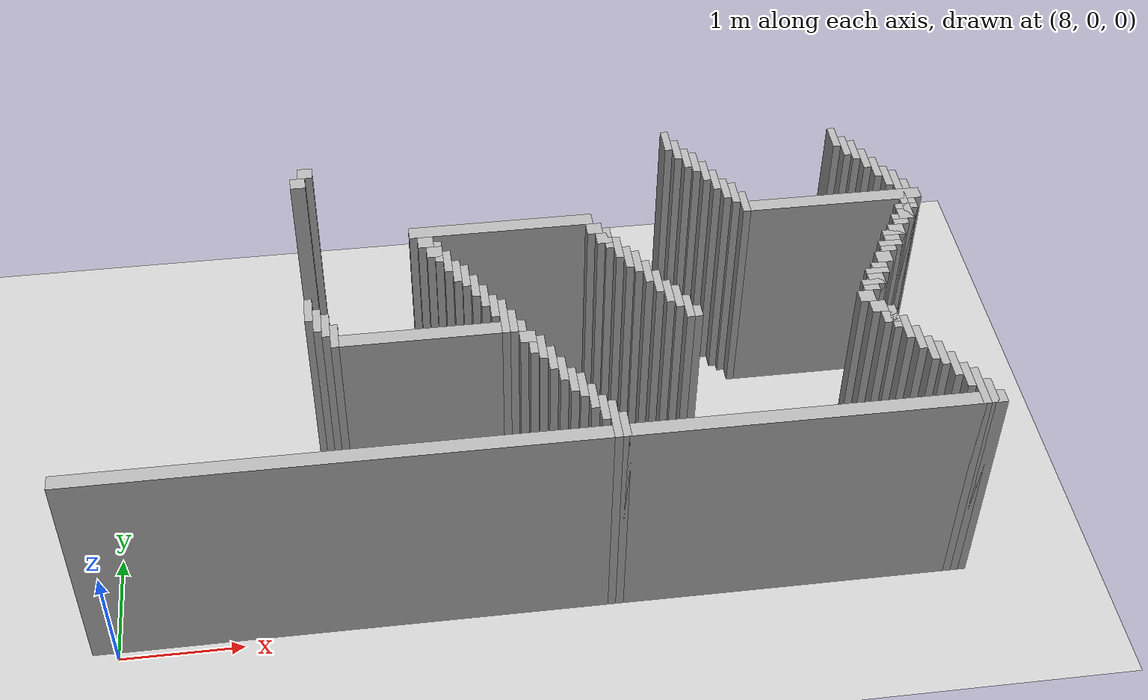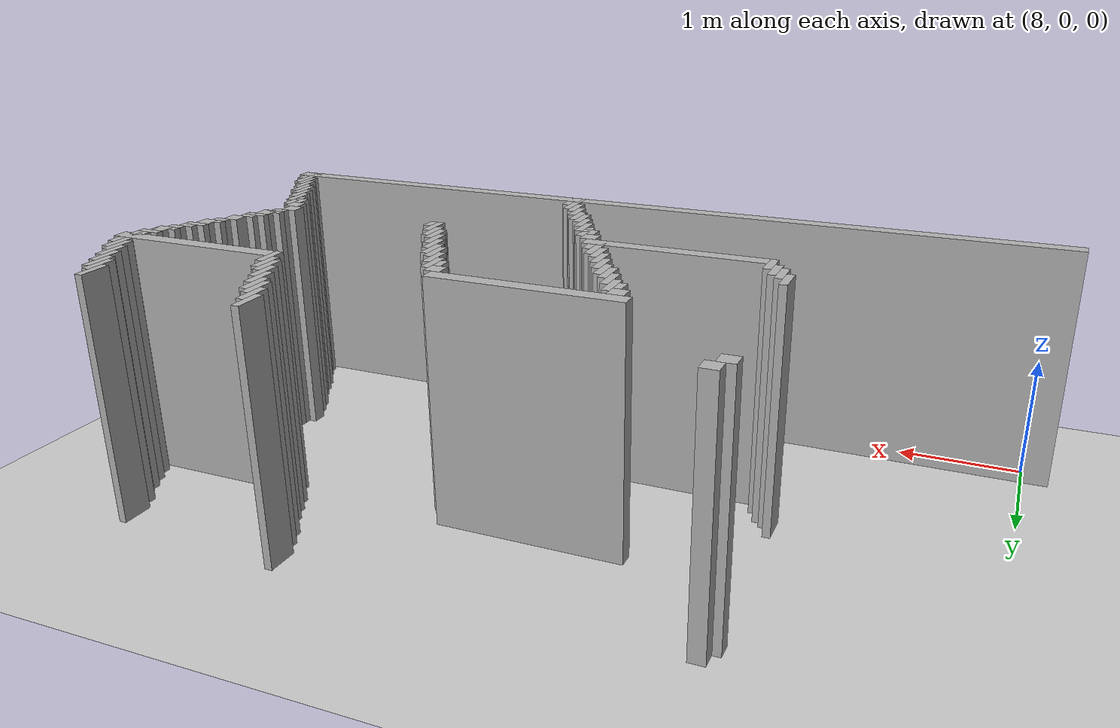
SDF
<sdf version="1.6">
 <world name="slam_world">
  <model name="ground_plane">
   <static>true</static>
   <link name="link">
    <collision name="collision">
     <geometry><plane><normal>0 0 1</normal><size>100 100</size></plane></geometry>
    </collision>
    <visual name="visual">
     <geometry><plane><normal>0 0 1</normal><size>100 100</size></plane></geometry>
     <material>
      <ambient>0.8 0.8 0.8 1</ambient>
      <diffuse>0.8 0.8 0.8 1</diffuse>
      <specular>0.8 0.8 0.8 1</specular>
     </material>
    </visual>
   </link>
  </model>
  <model name="wall_1944">
   <static>true</static>
   <pose>12.925531914893616 3.5106382978723403 1.0 0 0 0</pose>
   <link name="link">
    <collision name="collision">
     <geometry><box><size>0.06382978723404255 0.2553191489361702 2.0</size></box></geometry>
    </collision>
    <visual name="visual">
     <geometry><box><size>0.06382978723404255 0.2553191489361702 2.0</size></box></geometry>
     <material><ambient>0.5 0.5 0.5 1</ambient><diffuse>0.7 0.7 0.7 1</diffuse></material>
    </visual>
   </link>
  </model>
  <model name="wall_1955">
   <static>true</static>
   <pose>9.76595744680851 3.4468085106382977 1.0 0 0 0</pose>
   <link name="link">
    <collision name="collision">
     <geometry><box><size>0.1276595744680851 0.1276595744680851 2.0</size></box></geometry>
    </collision>
    <visual name="visual">
     <geometry><box><size>0.1276595744680851 0.1276595744680851 2.0</size></box></geometry>
     <material><ambient>0.5 0.5 0.5 1</ambient><diffuse>0.7 0.7 0.7 1</diffuse></material>
    </visual>
   </link>
  </model>
  <model name="wall_1956">
   <static>true</static>
   <pose>12.989361702127658 3.382978723404255 1.0 0 0 0</pose>
   <link name="link">
    <collision name="collision">
     <geometry><box><size>0.06382978723404255 0.2553191489361702 2.0</size></box></geometry>
    </collision>
    <visual name="visual">
     <geometry><box><size>0.06382978723404255 0.2553191489361702 2.0</size></box></geometry>
     <material><ambient>0.5 0.5 0.5 1</ambient><diffuse>0.7 0.7 0.7 1</diffuse></material>
    </visual>
   </link>
  </model>
  <model name="wall_1957">
   <static>true</static>
   <pose>14.393617021276595 3.382978723404255 1.0 0 0 0</pose>
   <link name="link">
    <collision name="collision">
     <geometry><box><size>0.06382978723404255 0.2553191489361702 2.0</size></box></geometry>
    </collision>
    <visual name="visual">
     <geometry><box><size>0.06382978723404255 0.2553191489361702 2.0</size></box></geometry>
     <material><ambient>0.5 0.5 0.5 1</ambient><diffuse>0.7 0.7 0.7 1</diffuse></material>
    </visual>
   </link>
  </model>
  <model name="wall_1963">
   <static>true</static>
   <pose>9.702127659574467 3.3191489361702127 1.0 0 0 0</pose>
   <link name="link">
    <collision name="collision">
     <geometry><box><size>0.1276595744680851 0.1276595744680851 2.0</size></box></geometry>
    </collision>
    <visual name="visual">
     <geometry><box><size>0.1276595744680851 0.1276595744680851 2.0</size></box></geometry>
     <material><ambient>0.5 0.5 0.5 1</ambient><diffuse>0.7 0.7 0.7 1</diffuse></material>
    </visual>
   </link>
  </model>
  <model name="wall_1964">
   <static>true</static>
   <pose>13.053191489361701 3.25531914893617 1.0 0 0 0</pose>
   <link name="link">
    <collision name="collision">
     <geometry><box><size>0.06382978723404255 0.2553191489361702 2.0</size></box></geometry>
    </collision>
    <visual name="visual">
     <geometry><box><size>0.06382978723404255 0.2553191489361702 2.0</size></box></geometry>
     <material><ambient>0.5 0.5 0.5 1</ambient><diffuse>0.7 0.7 0.7 1</diffuse></material>
    </visual>
   </link>
  </model>
  <model name="wall_1965">
   <static>true</static>
   <pose>14.457446808510637 3.25531914893617 1.0 0 0 0</pose>
   <link name="link">
    <collision name="collision">
     <geometry><box><size>0.06382978723404255 0.2553191489361702 2.0</size></box></geometry>
    </collision>
    <visual name="visual">
     <geometry><box><size>0.06382978723404255 0.2553191489361702 2.0</size></box></geometry>
     <material><ambient>0.5 0.5 0.5 1</ambient><diffuse>0.7 0.7 0.7 1</diffuse></material>
    </visual>
   </link>
  </model>
  <model name="wall_1972">
   <static>true</static>
   <pose>13.117021276595743 3.1914893617021276 1.0 0 0 0</pose>
   <link name="link">
    <collision name="collision">
     <geometry><box><size>0.06382978723404255 0.2553191489361702 2.0</size></box></geometry>
    </collision>
    <visual name="visual">
     <geometry><box><size>0.06382978723404255 0.2553191489361702 2.0</size></box></geometry>
     <material><ambient>0.5 0.5 0.5 1</ambient><diffuse>0.7 0.7 0.7 1</diffuse></material>
    </visual>
   </link>
  </model>
  <model name="wall_1973">
   <static>true</static>
   <pose>14.52127659574468 3.1914893617021276 1.0 0 0 0</pose>
   <link name="link">
    <collision name="collision">
     <geometry><box><size>0.06382978723404255 0.2553191489361702 2.0</size></box></geometry>
    </collision>
    <visual name="visual">
     <geometry><box><size>0.06382978723404255 0.2553191489361702 2.0</size></box></geometry>
     <material><ambient>0.5 0.5 0.5 1</ambient><diffuse>0.7 0.7 0.7 1</diffuse></material>
    </visual>
   </link>
  </model>
  <model name="wall_1983">
   <static>true</static>
   <pose>13.180851063829786 3.0638297872340425 1.0 0 0 0</pose>
   <link name="link">
    <collision name="collision">
     <geometry><box><size>0.06382978723404255 0.2553191489361702 2.0</size></box></geometry>
    </collision>
    <visual name="visual">
     <geometry><box><size>0.06382978723404255 0.2553191489361702 2.0</size></box></geometry>
     <material><ambient>0.5 0.5 0.5 1</ambient><diffuse>0.7 0.7 0.7 1</diffuse></material>
    </visual>
   </link>
  </model>
  <model name="wall_1984">
   <static>true</static>
   <pose>14.585106382978722 3.0638297872340425 1.0 0 0 0</pose>
   <link name="link">
    <collision name="collision">
     <geometry><box><size>0.06382978723404255 0.2553191489361702 2.0</size></box></geometry>
    </collision>
    <visual name="visual">
     <geometry><box><size>0.06382978723404255 0.2553191489361702 2.0</size></box></geometry>
     <material><ambient>0.5 0.5 0.5 1</ambient><diffuse>0.7 0.7 0.7 1</diffuse></material>
    </visual>
   </link>
  </model>
  <model name="wall_1994">
   <static>true</static>
   <pose>13.244680851063828 2.936170212765957 1.0 0 0 0</pose>
   <link name="link">
    <collision name="collision">
     <geometry><box><size>0.06382978723404255 0.2553191489361702 2.0</size></box></geometry>
    </collision>
    <visual name="visual">
     <geometry><box><size>0.06382978723404255 0.2553191489361702 2.0</size></box></geometry>
     <material><ambient>0.5 0.5 0.5 1</ambient><diffuse>0.7 0.7 0.7 1</diffuse></material>
    </visual>
   </link>
  </model>
  <model name="wall_1995">
   <static>true</static>
   <pose>14.648936170212766 2.936170212765957 1.0 0 0 0</pose>
   <link name="link">
    <collision name="collision">
     <geometry><box><size>0.06382978723404255 0.2553191489361702 2.0</size></box></geometry>
    </collision>
    <visual name="visual">
     <geometry><box><size>0.06382978723404255 0.2553191489361702 2.0</size></box></geometry>
     <material><ambient>0.5 0.5 0.5 1</ambient><diffuse>0.7 0.7 0.7 1</diffuse></material>
    </visual>
   </link>
  </model>
  <model name="wall_2002">
   <static>true</static>
   <pose>13.308510638297872 2.808510638297872 1.0 0 0 0</pose>
   <link name="link">
    <collision name="collision">
     <geometry><box><size>0.06382978723404255 0.2553191489361702 2.0</size></box></geometry>
    </collision>
    <visual name="visual">
     <geometry><box><size>0.06382978723404255 0.2553191489361702 2.0</size></box></geometry>
     <material><ambient>0.5 0.5 0.5 1</ambient><diffuse>0.7 0.7 0.7 1</diffuse></material>
    </visual>
   </link>
  </model>
  <model name="wall_2003">
   <static>true</static>
   <pose>14.712765957446807 2.808510638297872 1.0 0 0 0</pose>
   <link name="link">
    <collision name="collision">
     <geometry><box><size>0.06382978723404255 0.2553191489361702 2.0</size></box></geometry>
    </collision>
    <visual name="visual">
     <geometry><box><size>0.06382978723404255 0.2553191489361702 2.0</size></box></geometry>
     <material><ambient>0.5 0.5 0.5 1</ambient><diffuse>0.7 0.7 0.7 1</diffuse></material>
    </visual>
   </link>
  </model>
  <model name="wall_2010">
   <static>true</static>
   <pose>13.372340425531913 2.7446808510638294 1.0 0 0 0</pose>
   <link name="link">
    <collision name="collision">
     <geometry><box><size>0.06382978723404255 0.2553191489361702 2.0</size></box></geometry>
    </collision>
    <visual name="visual">
     <geometry><box><size>0.06382978723404255 0.2553191489361702 2.0</size></box></geometry>
     <material><ambient>0.5 0.5 0.5 1</ambient><diffuse>0.7 0.7 0.7 1</diffuse></material>
    </visual>
   </link>
  </model>
  <model name="wall_2011">
   <static>true</static>
   <pose>14.77659574468085 2.553191489361702 1.0 0 0 0</pose>
   <link name="link">
    <collision name="collision">
     <geometry><box><size>0.06382978723404255 0.6382978723404255 2.0</size></box></geometry>
    </collision>
    <visual name="visual">
     <geometry><box><size>0.06382978723404255 0.6382978723404255 2.0</size></box></geometry>
     <material><ambient>0.5 0.5 0.5 1</ambient><diffuse>0.7 0.7 0.7 1</diffuse></material>
    </visual>
   </link>
  </model>
  <model name="wall_2020">
   <static>true</static>
   <pose>13.436170212765957 2.6170212765957444 1.0 0 0 0</pose>
   <link name="link">
    <collision name="collision">
     <geometry><box><size>0.06382978723404255 0.2553191489361702 2.0</size></box></geometry>
    </collision>
    <visual name="visual">
     <geometry><box><size>0.06382978723404255 0.2553191489361702 2.0</size></box></geometry>
     <material><ambient>0.5 0.5 0.5 1</ambient><diffuse>0.7 0.7 0.7 1</diffuse></material>
    </visual>
   </link>
  </model>
  <model name="wall_2021">
   <static>true</static>
   <pose>14.840425531914892 2.553191489361702 1.0 0 0 0</pose>
   <link name="link">
    <collision name="collision">
     <geometry><box><size>0.06382978723404255 0.3829787234042553 2.0</size></box></geometry>
    </collision>
    <visual name="visual">
     <geometry><box><size>0.06382978723404255 0.3829787234042553 2.0</size></box></geometry>
     <material><ambient>0.5 0.5 0.5 1</ambient><diffuse>0.7 0.7 0.7 1</diffuse></material>
    </visual>
   </link>
  </model>
  <model name="wall_2031">
   <static>true</static>
   <pose>11.361702127659573 2.553191489361702 1.0 0 0 0</pose>
   <link name="link">
    <collision name="collision">
     <geometry><box><size>1.5319148936170213 0.1276595744680851 2.0</size></box></geometry>
    </collision>
    <visual name="visual">
     <geometry><box><size>1.5319148936170213 0.1276595744680851 2.0</size></box></geometry>
     <material><ambient>0.5 0.5 0.5 1</ambient><diffuse>0.7 0.7 0.7 1</diffuse></material>
    </visual>
   </link>
  </model>
  <model name="wall_2032">
   <static>true</static>
   <pose>14.202127659574467 2.553191489361702 1.0 0 0 0</pose>
   <link name="link">
    <collision name="collision">
     <geometry><box><size>1.4680851063829785 0.1276595744680851 2.0</size></box></geometry>
    </collision>
    <visual name="visual">
     <geometry><box><size>1.4680851063829785 0.1276595744680851 2.0</size></box></geometry>
     <material><ambient>0.5 0.5 0.5 1</ambient><diffuse>0.7 0.7 0.7 1</diffuse></material>
    </visual>
   </link>
  </model>
  <model name="wall_2037">
   <static>true</static>
   <pose>10.723404255319148 2.4255319148936167 1.0 0 0 0</pose>
   <link name="link">
    <collision name="collision">
     <geometry><box><size>0.1276595744680851 0.1276595744680851 2.0</size></box></geometry>
    </collision>
    <visual name="visual">
     <geometry><box><size>0.1276595744680851 0.1276595744680851 2.0</size></box></geometry>
     <material><ambient>0.5 0.5 0.5 1</ambient><diffuse>0.7 0.7 0.7 1</diffuse></material>
    </visual>
   </link>
  </model>
  <model name="wall_2038">
   <static>true</static>
   <pose>12.127659574468083 2.4255319148936167 1.0 0 0 0</pose>
   <link name="link">
    <collision name="collision">
     <geometry><box><size>0.1276595744680851 0.1276595744680851 2.0</size></box></geometry>
    </collision>
    <visual name="visual">
     <geometry><box><size>0.1276595744680851 0.1276595744680851 2.0</size></box></geometry>
     <material><ambient>0.5 0.5 0.5 1</ambient><diffuse>0.7 0.7 0.7 1</diffuse></material>
    </visual>
   </link>
  </model>
  <model name="wall_2043">
   <static>true</static>
   <pose>10.819148936170212 2.2978723404255317 1.0 0 0 0</pose>
   <link name="link">
    <collision name="collision">
     <geometry><box><size>0.06382978723404255 0.2553191489361702 2.0</size></box></geometry>
    </collision>
    <visual name="visual">
     <geometry><box><size>0.06382978723404255 0.2553191489361702 2.0</size></box></geometry>
     <material><ambient>0.5 0.5 0.5 1</ambient><diffuse>0.7 0.7 0.7 1</diffuse></material>
    </visual>
   </link>
  </model>
  <model name="wall_2044">
   <static>true</static>
   <pose>12.223404255319148 2.2978723404255317 1.0 0 0 0</pose>
   <link name="link">
    <collision name="collision">
     <geometry><box><size>0.06382978723404255 0.2553191489361702 2.0</size></box></geometry>
    </collision>
    <visual name="visual">
     <geometry><box><size>0.06382978723404255 0.2553191489361702 2.0</size></box></geometry>
     <material><ambient>0.5 0.5 0.5 1</ambient><diffuse>0.7 0.7 0.7 1</diffuse></material>
    </visual>
   </link>
  </model>
  <model name="wall_2045">
   <static>true</static>
   <pose>14.77659574468085 2.3936170212765955 1.0 0 0 0</pose>
   <link name="link">
    <collision name="collision">
     <geometry><box><size>0.19148936170212766 0.06382978723404255 2.0</size></box></geometry>
    </collision>
    <visual name="visual">
     <geometry><box><size>0.19148936170212766 0.06382978723404255 2.0</size></box></geometry>
     <material><ambient>0.5 0.5 0.5 1</ambient><diffuse>0.7 0.7 0.7 1</diffuse></material>
    </visual>
   </link>
  </model>
  <model name="wall_2051">
   <static>true</static>
   <pose>10.787234042553191 2.2978723404255317 1.0 0 0 0</pose>
   <link name="link">
    <collision name="collision">
     <geometry><box><size>0.1276595744680851 0.1276595744680851 2.0</size></box></geometry>
    </collision>
    <visual name="visual">
     <geometry><box><size>0.1276595744680851 0.1276595744680851 2.0</size></box></geometry>
     <material><ambient>0.5 0.5 0.5 1</ambient><diffuse>0.7 0.7 0.7 1</diffuse></material>
    </visual>
   </link>
  </model>
  <model name="wall_2052">
   <static>true</static>
   <pose>12.191489361702127 2.2978723404255317 1.0 0 0 0</pose>
   <link name="link">
    <collision name="collision">
     <geometry><box><size>0.1276595744680851 0.1276595744680851 2.0</size></box></geometry>
    </collision>
    <visual name="visual">
     <geometry><box><size>0.1276595744680851 0.1276595744680851 2.0</size></box></geometry>
     <material><ambient>0.5 0.5 0.5 1</ambient><diffuse>0.7 0.7 0.7 1</diffuse></material>
    </visual>
   </link>
  </model>
  <model name="wall_2053">
   <static>true</static>
   <pose>14.744680851063828 2.2978723404255317 1.0 0 0 0</pose>
   <link name="link">
    <collision name="collision">
     <geometry><box><size>0.1276595744680851 0.1276595744680851 2.0</size></box></geometry>
    </collision>
    <visual name="visual">
     <geometry><box><size>0.1276595744680851 0.1276595744680851 2.0</size></box></geometry>
     <material><ambient>0.5 0.5 0.5 1</ambient><diffuse>0.7 0.7 0.7 1</diffuse></material>
    </visual>
   </link>
  </model>
  <model name="wall_2059">
   <static>true</static>
   <pose>10.882978723404255 2.1702127659574466 1.0 0 0 0</pose>
   <link name="link">
    <collision name="collision">
     <geometry><box><size>0.06382978723404255 0.2553191489361702 2.0</size></box></geometry>
    </collision>
    <visual name="visual">
     <geometry><box><size>0.06382978723404255 0.2553191489361702 2.0</size></box></geometry>
     <material><ambient>0.5 0.5 0.5 1</ambient><diffuse>0.7 0.7 0.7 1</diffuse></material>
    </visual>
   </link>
  </model>
  <model name="wall_2060">
   <static>true</static>
   <pose>12.287234042553191 2.1702127659574466 1.0 0 0 0</pose>
   <link name="link">
    <collision name="collision">
     <geometry><box><size>0.06382978723404255 0.2553191489361702 2.0</size></box></geometry>
    </collision>
    <visual name="visual">
     <geometry><box><size>0.06382978723404255 0.2553191489361702 2.0</size></box></geometry>
     <material><ambient>0.5 0.5 0.5 1</ambient><diffuse>0.7 0.7 0.7 1</diffuse></material>
    </visual>
   </link>
  </model>
  <model name="wall_2061">
   <static>true</static>
   <pose>14.712765957446807 2.2659574468085104 1.0 0 0 0</pose>
   <link name="link">
    <collision name="collision">
     <geometry><box><size>0.19148936170212766 0.06382978723404255 2.0</size></box></geometry>
    </collision>
    <visual name="visual">
     <geometry><box><size>0.19148936170212766 0.06382978723404255 2.0</size></box></geometry>
     <material><ambient>0.5 0.5 0.5 1</ambient><diffuse>0.7 0.7 0.7 1</diffuse></material>
    </visual>
   </link>
  </model>
  <model name="wall_2065">
   <static>true</static>
   <pose>14.680851063829786 2.202127659574468 1.0 0 0 0</pose>
   <link name="link">
    <collision name="collision">
     <geometry><box><size>0.1276595744680851 0.06382978723404255 2.0</size></box></geometry>
    </collision>
    <visual name="visual">
     <geometry><box><size>0.1276595744680851 0.06382978723404255 2.0</size></box></geometry>
     <material><ambient>0.5 0.5 0.5 1</ambient><diffuse>0.7 0.7 0.7 1</diffuse></material>
    </visual>
   </link>
  </model>
  <model name="wall_2071">
   <static>true</static>
   <pose>10.946808510638297 2.0425531914893615 1.0 0 0 0</pose>
   <link name="link">
    <collision name="collision">
     <geometry><box><size>0.06382978723404255 0.2553191489361702 2.0</size></box></geometry>
    </collision>
    <visual name="visual">
     <geometry><box><size>0.06382978723404255 0.2553191489361702 2.0</size></box></geometry>
     <material><ambient>0.5 0.5 0.5 1</ambient><diffuse>0.7 0.7 0.7 1</diffuse></material>
    </visual>
   </link>
  </model>
  <model name="wall_2072">
   <static>true</static>
   <pose>12.351063829787233 2.0425531914893615 1.0 0 0 0</pose>
   <link name="link">
    <collision name="collision">
     <geometry><box><size>0.06382978723404255 0.2553191489361702 2.0</size></box></geometry>
    </collision>
    <visual name="visual">
     <geometry><box><size>0.06382978723404255 0.2553191489361702 2.0</size></box></geometry>
     <material><ambient>0.5 0.5 0.5 1</ambient><diffuse>0.7 0.7 0.7 1</diffuse></material>
    </visual>
   </link>
  </model>
  <model name="wall_2073">
   <static>true</static>
   <pose>14.617021276595743 2.106382978723404 1.0 0 0 0</pose>
   <link name="link">
    <collision name="collision">
     <geometry><box><size>0.1276595744680851 0.1276595744680851 2.0</size></box></geometry>
    </collision>
    <visual name="visual">
     <geometry><box><size>0.1276595744680851 0.1276595744680851 2.0</size></box></geometry>
     <material><ambient>0.5 0.5 0.5 1</ambient><diffuse>0.7 0.7 0.7 1</diffuse></material>
    </visual>
   </link>
  </model>
  <model name="wall_2079">
   <static>true</static>
   <pose>11.01063829787234 1.978723404255319 1.0 0 0 0</pose>
   <link name="link">
    <collision name="collision">
     <geometry><box><size>0.06382978723404255 0.2553191489361702 2.0</size></box></geometry>
    </collision>
    <visual name="visual">
     <geometry><box><size>0.06382978723404255 0.2553191489361702 2.0</size></box></geometry>
     <material><ambient>0.5 0.5 0.5 1</ambient><diffuse>0.7 0.7 0.7 1</diffuse></material>
    </visual>
   </link>
  </model>
  <model name="wall_2080">
   <static>true</static>
   <pose>12.414893617021276 1.978723404255319 1.0 0 0 0</pose>
   <link name="link">
    <collision name="collision">
     <geometry><box><size>0.06382978723404255 0.2553191489361702 2.0</size></box></geometry>
    </collision>
    <visual name="visual">
     <geometry><box><size>0.06382978723404255 0.2553191489361702 2.0</size></box></geometry>
     <material><ambient>0.5 0.5 0.5 1</ambient><diffuse>0.7 0.7 0.7 1</diffuse></material>
    </visual>
   </link>
  </model>
  <model name="wall_2081">
   <static>true</static>
   <pose>14.585106382978722 2.074468085106383 1.0 0 0 0</pose>
   <link name="link">
    <collision name="collision">
     <geometry><box><size>0.19148936170212766 0.06382978723404255 2.0</size></box></geometry>
    </collision>
    <visual name="visual">
     <geometry><box><size>0.19148936170212766 0.06382978723404255 2.0</size></box></geometry>
     <material><ambient>0.5 0.5 0.5 1</ambient><diffuse>0.7 0.7 0.7 1</diffuse></material>
    </visual>
   </link>
  </model>
  <model name="wall_2084">
   <static>true</static>
   <pose>14.553191489361701 1.978723404255319 1.0 0 0 0</pose>
   <link name="link">
    <collision name="collision">
     <geometry><box><size>0.1276595744680851 0.1276595744680851 2.0</size></box></geometry>
    </collision>
    <visual name="visual">
     <geometry><box><size>0.1276595744680851 0.1276595744680851 2.0</size></box></geometry>
     <material><ambient>0.5 0.5 0.5 1</ambient><diffuse>0.7 0.7 0.7 1</diffuse></material>
    </visual>
   </link>
  </model>
  <model name="wall_2090">
   <static>true</static>
   <pose>11.074468085106382 1.851063829787234 1.0 0 0 0</pose>
   <link name="link">
    <collision name="collision">
     <geometry><box><size>0.06382978723404255 0.2553191489361702 2.0</size></box></geometry>
    </collision>
    <visual name="visual">
     <geometry><box><size>0.06382978723404255 0.2553191489361702 2.0</size></box></geometry>
     <material><ambient>0.5 0.5 0.5 1</ambient><diffuse>0.7 0.7 0.7 1</diffuse></material>
    </visual>
   </link>
  </model>
  <model name="wall_2091">
   <static>true</static>
   <pose>12.478723404255318 1.851063829787234 1.0 0 0 0</pose>
   <link name="link">
    <collision name="collision">
     <geometry><box><size>0.06382978723404255 0.2553191489361702 2.0</size></box></geometry>
    </collision>
    <visual name="visual">
     <geometry><box><size>0.06382978723404255 0.2553191489361702 2.0</size></box></geometry>
     <material><ambient>0.5 0.5 0.5 1</ambient><diffuse>0.7 0.7 0.7 1</diffuse></material>
    </visual>
   </link>
  </model>
  <model name="wall_2092">
   <static>true</static>
   <pose>14.52127659574468 1.9468085106382977 1.0 0 0 0</pose>
   <link name="link">
    <collision name="collision">
     <geometry><box><size>0.19148936170212766 0.06382978723404255 2.0</size></box></geometry>
    </collision>
    <visual name="visual">
     <geometry><box><size>0.19148936170212766 0.06382978723404255 2.0</size></box></geometry>
     <material><ambient>0.5 0.5 0.5 1</ambient><diffuse>0.7 0.7 0.7 1</diffuse></material>
    </visual>
   </link>
  </model>
  <model name="wall_2095">
   <static>true</static>
   <pose>14.489361702127658 1.8829787234042552 1.0 0 0 0</pose>
   <link name="link">
    <collision name="collision">
     <geometry><box><size>0.1276595744680851 0.06382978723404255 2.0</size></box></geometry>
    </collision>
    <visual name="visual">
     <geometry><box><size>0.1276595744680851 0.06382978723404255 2.0</size></box></geometry>
     <material><ambient>0.5 0.5 0.5 1</ambient><diffuse>0.7 0.7 0.7 1</diffuse></material>
    </visual>
   </link>
  </model>
  <model name="wall_2100">
   <static>true</static>
   <pose>9.734042553191488 1.7234042553191489 1.0 0 0 0</pose>
   <link name="link">
    <collision name="collision">
     <geometry><box><size>0.06382978723404255 0.2553191489361702 2.0</size></box></geometry>
    </collision>
    <visual name="visual">
     <geometry><box><size>0.06382978723404255 0.2553191489361702 2.0</size></box></geometry>
     <material><ambient>0.5 0.5 0.5 1</ambient><diffuse>0.7 0.7 0.7 1</diffuse></material>
    </visual>
   </link>
  </model>
  <model name="wall_2101">
   <static>true</static>
   <pose>11.138297872340425 1.7234042553191489 1.0 0 0 0</pose>
   <link name="link">
    <collision name="collision">
     <geometry><box><size>0.06382978723404255 0.2553191489361702 2.0</size></box></geometry>
    </collision>
    <visual name="visual">
     <geometry><box><size>0.06382978723404255 0.2553191489361702 2.0</size></box></geometry>
     <material><ambient>0.5 0.5 0.5 1</ambient><diffuse>0.7 0.7 0.7 1</diffuse></material>
    </visual>
   </link>
  </model>
  <model name="wall_2102">
   <static>true</static>
   <pose>12.542553191489361 1.7234042553191489 1.0 0 0 0</pose>
   <link name="link">
    <collision name="collision">
     <geometry><box><size>0.06382978723404255 0.2553191489361702 2.0</size></box></geometry>
    </collision>
    <visual name="visual">
     <geometry><box><size>0.06382978723404255 0.2553191489361702 2.0</size></box></geometry>
     <material><ambient>0.5 0.5 0.5 1</ambient><diffuse>0.7 0.7 0.7 1</diffuse></material>
    </visual>
   </link>
  </model>
  <model name="wall_2103">
   <static>true</static>
   <pose>14.425531914893616 1.7872340425531914 1.0 0 0 0</pose>
   <link name="link">
    <collision name="collision">
     <geometry><box><size>0.1276595744680851 0.1276595744680851 2.0</size></box></geometry>
    </collision>
    <visual name="visual">
     <geometry><box><size>0.1276595744680851 0.1276595744680851 2.0</size></box></geometry>
     <material><ambient>0.5 0.5 0.5 1</ambient><diffuse>0.7 0.7 0.7 1</diffuse></material>
    </visual>
   </link>
  </model>
  <model name="wall_2108">
   <static>true</static>
   <pose>9.797872340425531 1.5957446808510638 1.0 0 0 0</pose>
   <link name="link">
    <collision name="collision">
     <geometry><box><size>0.06382978723404255 0.2553191489361702 2.0</size></box></geometry>
    </collision>
    <visual name="visual">
     <geometry><box><size>0.06382978723404255 0.2553191489361702 2.0</size></box></geometry>
     <material><ambient>0.5 0.5 0.5 1</ambient><diffuse>0.7 0.7 0.7 1</diffuse></material>
    </visual>
   </link>
  </model>
  <model name="wall_2109">
   <static>true</static>
   <pose>11.202127659574467 1.5957446808510638 1.0 0 0 0</pose>
   <link name="link">
    <collision name="collision">
     <geometry><box><size>0.06382978723404255 0.2553191489361702 2.0</size></box></geometry>
    </collision>
    <visual name="visual">
     <geometry><box><size>0.06382978723404255 0.2553191489361702 2.0</size></box></geometry>
     <material><ambient>0.5 0.5 0.5 1</ambient><diffuse>0.7 0.7 0.7 1</diffuse></material>
    </visual>
   </link>
  </model>
  <model name="wall_2110">
   <static>true</static>
   <pose>12.606382978723403 1.5957446808510638 1.0 0 0 0</pose>
   <link name="link">
    <collision name="collision">
     <geometry><box><size>0.06382978723404255 0.2553191489361702 2.0</size></box></geometry>
    </collision>
    <visual name="visual">
     <geometry><box><size>0.06382978723404255 0.2553191489361702 2.0</size></box></geometry>
     <material><ambient>0.5 0.5 0.5 1</ambient><diffuse>0.7 0.7 0.7 1</diffuse></material>
    </visual>
   </link>
  </model>
  <model name="wall_2111">
   <static>true</static>
   <pose>14.361702127659573 1.6595744680851063 1.0 0 0 0</pose>
   <link name="link">
    <collision name="collision">
     <geometry><box><size>0.1276595744680851 0.1276595744680851 2.0</size></box></geometry>
    </collision>
    <visual name="visual">
     <geometry><box><size>0.1276595744680851 0.1276595744680851 2.0</size></box></geometry>
     <material><ambient>0.5 0.5 0.5 1</ambient><diffuse>0.7 0.7 0.7 1</diffuse></material>
    </visual>
   </link>
  </model>
  <model name="wall_2116">
   <static>true</static>
   <pose>9.861702127659573 1.5319148936170213 1.0 0 0 0</pose>
   <link name="link">
    <collision name="collision">
     <geometry><box><size>0.06382978723404255 0.2553191489361702 2.0</size></box></geometry>
    </collision>
    <visual name="visual">
     <geometry><box><size>0.06382978723404255 0.2553191489361702 2.0</size></box></geometry>
     <material><ambient>0.5 0.5 0.5 1</ambient><diffuse>0.7 0.7 0.7 1</diffuse></material>
    </visual>
   </link>
  </model>
  <model name="wall_2117">
   <static>true</static>
   <pose>11.26595744680851 1.4680851063829785 1.0 0 0 0</pose>
   <link name="link">
    <collision name="collision">
     <geometry><box><size>0.06382978723404255 0.3829787234042553 2.0</size></box></geometry>
    </collision>
    <visual name="visual">
     <geometry><box><size>0.06382978723404255 0.3829787234042553 2.0</size></box></geometry>
     <material><ambient>0.5 0.5 0.5 1</ambient><diffuse>0.7 0.7 0.7 1</diffuse></material>
    </visual>
   </link>
  </model>
  <model name="wall_2118">
   <static>true</static>
   <pose>12.670212765957446 1.5319148936170213 1.0 0 0 0</pose>
   <link name="link">
    <collision name="collision">
     <geometry><box><size>0.06382978723404255 0.2553191489361702 2.0</size></box></geometry>
    </collision>
    <visual name="visual">
     <geometry><box><size>0.06382978723404255 0.2553191489361702 2.0</size></box></geometry>
     <material><ambient>0.5 0.5 0.5 1</ambient><diffuse>0.7 0.7 0.7 1</diffuse></material>
    </visual>
   </link>
  </model>
  <model name="wall_2119">
   <static>true</static>
   <pose>14.329787234042552 1.627659574468085 1.0 0 0 0</pose>
   <link name="link">
    <collision name="collision">
     <geometry><box><size>0.19148936170212766 0.06382978723404255 2.0</size></box></geometry>
    </collision>
    <visual name="visual">
     <geometry><box><size>0.19148936170212766 0.06382978723404255 2.0</size></box></geometry>
     <material><ambient>0.5 0.5 0.5 1</ambient><diffuse>0.7 0.7 0.7 1</diffuse></material>
    </visual>
   </link>
  </model>
  <model name="wall_2122">
   <static>true</static>
   <pose>14.297872340425531 1.5319148936170213 1.0 0 0 0</pose>
   <link name="link">
    <collision name="collision">
     <geometry><box><size>0.1276595744680851 0.1276595744680851 2.0</size></box></geometry>
    </collision>
    <visual name="visual">
     <geometry><box><size>0.1276595744680851 0.1276595744680851 2.0</size></box></geometry>
     <material><ambient>0.5 0.5 0.5 1</ambient><diffuse>0.7 0.7 0.7 1</diffuse></material>
    </visual>
   </link>
  </model>
  <model name="wall_2126">
   <static>true</static>
   <pose>9.925531914893616 1.404255319148936 1.0 0 0 0</pose>
   <link name="link">
    <collision name="collision">
     <geometry><box><size>0.06382978723404255 0.2553191489361702 2.0</size></box></geometry>
    </collision>
    <visual name="visual">
     <geometry><box><size>0.06382978723404255 0.2553191489361702 2.0</size></box></geometry>
     <material><ambient>0.5 0.5 0.5 1</ambient><diffuse>0.7 0.7 0.7 1</diffuse></material>
    </visual>
   </link>
  </model>
  <model name="wall_2127">
   <static>true</static>
   <pose>11.329787234042552 1.404255319148936 1.0 0 0 0</pose>
   <link name="link">
    <collision name="collision">
     <geometry><box><size>0.06382978723404255 0.2553191489361702 2.0</size></box></geometry>
    </collision>
    <visual name="visual">
     <geometry><box><size>0.06382978723404255 0.2553191489361702 2.0</size></box></geometry>
     <material><ambient>0.5 0.5 0.5 1</ambient><diffuse>0.7 0.7 0.7 1</diffuse></material>
    </visual>
   </link>
  </model>
  <model name="wall_2128">
   <static>true</static>
   <pose>12.734042553191488 1.404255319148936 1.0 0 0 0</pose>
   <link name="link">
    <collision name="collision">
     <geometry><box><size>0.06382978723404255 0.2553191489361702 2.0</size></box></geometry>
    </collision>
    <visual name="visual">
     <geometry><box><size>0.06382978723404255 0.2553191489361702 2.0</size></box></geometry>
     <material><ambient>0.5 0.5 0.5 1</ambient><diffuse>0.7 0.7 0.7 1</diffuse></material>
    </visual>
   </link>
  </model>
  <model name="wall_2129">
   <static>true</static>
   <pose>14.265957446808509 1.4999999999999998 1.0 0 0 0</pose>
   <link name="link">
    <collision name="collision">
     <geometry><box><size>0.19148936170212766 0.06382978723404255 2.0</size></box></geometry>
    </collision>
    <visual name="visual">
     <geometry><box><size>0.19148936170212766 0.06382978723404255 2.0</size></box></geometry>
     <material><ambient>0.5 0.5 0.5 1</ambient><diffuse>0.7 0.7 0.7 1</diffuse></material>
    </visual>
   </link>
  </model>
  <model name="wall_2132">
   <static>true</static>
   <pose>14.234042553191488 1.4361702127659572 1.0 0 0 0</pose>
   <link name="link">
    <collision name="collision">
     <geometry><box><size>0.1276595744680851 0.06382978723404255 2.0</size></box></geometry>
    </collision>
    <visual name="visual">
     <geometry><box><size>0.1276595744680851 0.06382978723404255 2.0</size></box></geometry>
     <material><ambient>0.5 0.5 0.5 1</ambient><diffuse>0.7 0.7 0.7 1</diffuse></material>
    </visual>
   </link>
  </model>
  <model name="wall_2138">
   <static>true</static>
   <pose>10.691489361702127 1.3404255319148934 1.0 0 0 0</pose>
   <link name="link">
    <collision name="collision">
     <geometry><box><size>1.4680851063829785 0.1276595744680851 2.0</size></box></geometry>
    </collision>
    <visual name="visual">
     <geometry><box><size>1.4680851063829785 0.1276595744680851 2.0</size></box></geometry>
     <material><ambient>0.5 0.5 0.5 1</ambient><diffuse>0.7 0.7 0.7 1</diffuse></material>
    </visual>
   </link>
  </model>
  <model name="wall_2139">
   <static>true</static>
   <pose>12.797872340425531 1.3404255319148934 1.0 0 0 0</pose>
   <link name="link">
    <collision name="collision">
     <geometry><box><size>0.06382978723404255 0.1276595744680851 2.0</size></box></geometry>
    </collision>
    <visual name="visual">
     <geometry><box><size>0.06382978723404255 0.1276595744680851 2.0</size></box></geometry>
     <material><ambient>0.5 0.5 0.5 1</ambient><diffuse>0.7 0.7 0.7 1</diffuse></material>
    </visual>
   </link>
  </model>
  <model name="wall_2140">
   <static>true</static>
   <pose>14.170212765957446 1.3404255319148934 1.0 0 0 0</pose>
   <link name="link">
    <collision name="collision">
     <geometry><box><size>0.1276595744680851 0.1276595744680851 2.0</size></box></geometry>
    </collision>
    <visual name="visual">
     <geometry><box><size>0.1276595744680851 0.1276595744680851 2.0</size></box></geometry>
     <material><ambient>0.5 0.5 0.5 1</ambient><diffuse>0.7 0.7 0.7 1</diffuse></material>
    </visual>
   </link>
  </model>
  <model name="wall_2145">
   <static>true</static>
   <pose>11.425531914893616 1.2127659574468084 1.0 0 0 0</pose>
   <link name="link">
    <collision name="collision">
     <geometry><box><size>0.1276595744680851 0.1276595744680851 2.0</size></box></geometry>
    </collision>
    <visual name="visual">
     <geometry><box><size>0.1276595744680851 0.1276595744680851 2.0</size></box></geometry>
     <material><ambient>0.5 0.5 0.5 1</ambient><diffuse>0.7 0.7 0.7 1</diffuse></material>
    </visual>
   </link>
  </model>
  <model name="wall_2146">
   <static>true</static>
   <pose>14.234042553191488 1.2127659574468084 1.0 0 0 0</pose>
   <link name="link">
    <collision name="collision">
     <geometry><box><size>0.1276595744680851 0.1276595744680851 2.0</size></box></geometry>
    </collision>
    <visual name="visual">
     <geometry><box><size>0.1276595744680851 0.1276595744680851 2.0</size></box></geometry>
     <material><ambient>0.5 0.5 0.5 1</ambient><diffuse>0.7 0.7 0.7 1</diffuse></material>
    </visual>
   </link>
  </model>
  <model name="wall_2151">
   <static>true</static>
   <pose>11.52127659574468 1.0851063829787233 1.0 0 0 0</pose>
   <link name="link">
    <collision name="collision">
     <geometry><box><size>0.06382978723404255 0.2553191489361702 2.0</size></box></geometry>
    </collision>
    <visual name="visual">
     <geometry><box><size>0.06382978723404255 0.2553191489361702 2.0</size></box></geometry>
     <material><ambient>0.5 0.5 0.5 1</ambient><diffuse>0.7 0.7 0.7 1</diffuse></material>
    </visual>
   </link>
  </model>
  <model name="wall_2152">
   <static>true</static>
   <pose>14.329787234042552 1.0851063829787233 1.0 0 0 0</pose>
   <link name="link">
    <collision name="collision">
     <geometry><box><size>0.06382978723404255 0.2553191489361702 2.0</size></box></geometry>
    </collision>
    <visual name="visual">
     <geometry><box><size>0.06382978723404255 0.2553191489361702 2.0</size></box></geometry>
     <material><ambient>0.5 0.5 0.5 1</ambient><diffuse>0.7 0.7 0.7 1</diffuse></material>
    </visual>
   </link>
  </model>
  <model name="wall_2157">
   <static>true</static>
   <pose>11.489361702127658 1.0851063829787233 1.0 0 0 0</pose>
   <link name="link">
    <collision name="collision">
     <geometry><box><size>0.1276595744680851 0.1276595744680851 2.0</size></box></geometry>
    </collision>
    <visual name="visual">
     <geometry><box><size>0.1276595744680851 0.1276595744680851 2.0</size></box></geometry>
     <material><ambient>0.5 0.5 0.5 1</ambient><diffuse>0.7 0.7 0.7 1</diffuse></material>
    </visual>
   </link>
  </model>
  <model name="wall_2158">
   <static>true</static>
   <pose>14.297872340425531 1.0851063829787233 1.0 0 0 0</pose>
   <link name="link">
    <collision name="collision">
     <geometry><box><size>0.1276595744680851 0.1276595744680851 2.0</size></box></geometry>
    </collision>
    <visual name="visual">
     <geometry><box><size>0.1276595744680851 0.1276595744680851 2.0</size></box></geometry>
     <material><ambient>0.5 0.5 0.5 1</ambient><diffuse>0.7 0.7 0.7 1</diffuse></material>
    </visual>
   </link>
  </model>
  <model name="wall_2163">
   <static>true</static>
   <pose>11.585106382978722 0.9574468085106382 1.0 0 0 0</pose>
   <link name="link">
    <collision name="collision">
     <geometry><box><size>0.06382978723404255 0.2553191489361702 2.0</size></box></geometry>
    </collision>
    <visual name="visual">
     <geometry><box><size>0.06382978723404255 0.2553191489361702 2.0</size></box></geometry>
     <material><ambient>0.5 0.5 0.5 1</ambient><diffuse>0.7 0.7 0.7 1</diffuse></material>
    </visual>
   </link>
  </model>
  <model name="wall_2164">
   <static>true</static>
   <pose>14.393617021276595 0.9574468085106382 1.0 0 0 0</pose>
   <link name="link">
    <collision name="collision">
     <geometry><box><size>0.06382978723404255 0.2553191489361702 2.0</size></box></geometry>
    </collision>
    <visual name="visual">
     <geometry><box><size>0.06382978723404255 0.2553191489361702 2.0</size></box></geometry>
     <material><ambient>0.5 0.5 0.5 1</ambient><diffuse>0.7 0.7 0.7 1</diffuse></material>
    </visual>
   </link>
  </model>
  <model name="wall_2172">
   <static>true</static>
   <pose>11.648936170212766 0.8297872340425532 1.0 0 0 0</pose>
   <link name="link">
    <collision name="collision">
     <geometry><box><size>0.06382978723404255 0.2553191489361702 2.0</size></box></geometry>
    </collision>
    <visual name="visual">
     <geometry><box><size>0.06382978723404255 0.2553191489361702 2.0</size></box></geometry>
     <material><ambient>0.5 0.5 0.5 1</ambient><diffuse>0.7 0.7 0.7 1</diffuse></material>
    </visual>
   </link>
  </model>
  <model name="wall_2173">
   <static>true</static>
   <pose>14.457446808510637 0.8297872340425532 1.0 0 0 0</pose>
   <link name="link">
    <collision name="collision">
     <geometry><box><size>0.06382978723404255 0.2553191489361702 2.0</size></box></geometry>
    </collision>
    <visual name="visual">
     <geometry><box><size>0.06382978723404255 0.2553191489361702 2.0</size></box></geometry>
     <material><ambient>0.5 0.5 0.5 1</ambient><diffuse>0.7 0.7 0.7 1</diffuse></material>
    </visual>
   </link>
  </model>
  <model name="wall_2178">
   <static>true</static>
   <pose>11.712765957446807 0.702127659574468 1.0 0 0 0</pose>
   <link name="link">
    <collision name="collision">
     <geometry><box><size>0.06382978723404255 0.2553191489361702 2.0</size></box></geometry>
    </collision>
    <visual name="visual">
     <geometry><box><size>0.06382978723404255 0.2553191489361702 2.0</size></box></geometry>
     <material><ambient>0.5 0.5 0.5 1</ambient><diffuse>0.7 0.7 0.7 1</diffuse></material>
    </visual>
   </link>
  </model>
  <model name="wall_2179">
   <static>true</static>
   <pose>14.52127659574468 0.702127659574468 1.0 0 0 0</pose>
   <link name="link">
    <collision name="collision">
     <geometry><box><size>0.06382978723404255 0.2553191489361702 2.0</size></box></geometry>
    </collision>
    <visual name="visual">
     <geometry><box><size>0.06382978723404255 0.2553191489361702 2.0</size></box></geometry>
     <material><ambient>0.5 0.5 0.5 1</ambient><diffuse>0.7 0.7 0.7 1</diffuse></material>
    </visual>
   </link>
  </model>
  <model name="wall_2184">
   <static>true</static>
   <pose>11.77659574468085 0.6382978723404255 1.0 0 0 0</pose>
   <link name="link">
    <collision name="collision">
     <geometry><box><size>0.06382978723404255 0.2553191489361702 2.0</size></box></geometry>
    </collision>
    <visual name="visual">
     <geometry><box><size>0.06382978723404255 0.2553191489361702 2.0</size></box></geometry>
     <material><ambient>0.5 0.5 0.5 1</ambient><diffuse>0.7 0.7 0.7 1</diffuse></material>
    </visual>
   </link>
  </model>
  <model name="wall_2185">
   <static>true</static>
   <pose>14.585106382978722 0.6382978723404255 1.0 0 0 0</pose>
   <link name="link">
    <collision name="collision">
     <geometry><box><size>0.06382978723404255 0.2553191489361702 2.0</size></box></geometry>
    </collision>
    <visual name="visual">
     <geometry><box><size>0.06382978723404255 0.2553191489361702 2.0</size></box></geometry>
     <material><ambient>0.5 0.5 0.5 1</ambient><diffuse>0.7 0.7 0.7 1</diffuse></material>
    </visual>
   </link>
  </model>
  <model name="wall_2193">
   <static>true</static>
   <pose>11.840425531914892 0.5106382978723404 1.0 0 0 0</pose>
   <link name="link">
    <collision name="collision">
     <geometry><box><size>0.06382978723404255 0.2553191489361702 2.0</size></box></geometry>
    </collision>
    <visual name="visual">
     <geometry><box><size>0.06382978723404255 0.2553191489361702 2.0</size></box></geometry>
     <material><ambient>0.5 0.5 0.5 1</ambient><diffuse>0.7 0.7 0.7 1</diffuse></material>
    </visual>
   </link>
  </model>
  <model name="wall_2194">
   <static>true</static>
   <pose>14.648936170212766 0.5106382978723404 1.0 0 0 0</pose>
   <link name="link">
    <collision name="collision">
     <geometry><box><size>0.06382978723404255 0.2553191489361702 2.0</size></box></geometry>
    </collision>
    <visual name="visual">
     <geometry><box><size>0.06382978723404255 0.2553191489361702 2.0</size></box></geometry>
     <material><ambient>0.5 0.5 0.5 1</ambient><diffuse>0.7 0.7 0.7 1</diffuse></material>
    </visual>
   </link>
  </model>
  <model name="wall_2202">
   <static>true</static>
   <pose>11.904255319148936 0.3829787234042553 1.0 0 0 0</pose>
   <link name="link">
    <collision name="collision">
     <geometry><box><size>0.06382978723404255 0.2553191489361702 2.0</size></box></geometry>
    </collision>
    <visual name="visual">
     <geometry><box><size>0.06382978723404255 0.2553191489361702 2.0</size></box></geometry>
     <material><ambient>0.5 0.5 0.5 1</ambient><diffuse>0.7 0.7 0.7 1</diffuse></material>
    </visual>
   </link>
  </model>
  <model name="wall_2203">
   <static>true</static>
   <pose>14.712765957446807 0.3829787234042553 1.0 0 0 0</pose>
   <link name="link">
    <collision name="collision">
     <geometry><box><size>0.06382978723404255 0.2553191489361702 2.0</size></box></geometry>
    </collision>
    <visual name="visual">
     <geometry><box><size>0.06382978723404255 0.2553191489361702 2.0</size></box></geometry>
     <material><ambient>0.5 0.5 0.5 1</ambient><diffuse>0.7 0.7 0.7 1</diffuse></material>
    </visual>
   </link>
  </model>
  <model name="wall_2208">
   <static>true</static>
   <pose>11.968085106382977 0.2553191489361702 1.0 0 0 0</pose>
   <link name="link">
    <collision name="collision">
     <geometry><box><size>0.06382978723404255 0.3829787234042553 2.0</size></box></geometry>
    </collision>
    <visual name="visual">
     <geometry><box><size>0.06382978723404255 0.3829787234042553 2.0</size></box></geometry>
     <material><ambient>0.5 0.5 0.5 1</ambient><diffuse>0.7 0.7 0.7 1</diffuse></material>
    </visual>
   </link>
  </model>
  <model name="wall_2209">
   <static>true</static>
   <pose>14.77659574468085 0.2553191489361702 1.0 0 0 0</pose>
   <link name="link">
    <collision name="collision">
     <geometry><box><size>0.06382978723404255 0.3829787234042553 2.0</size></box></geometry>
    </collision>
    <visual name="visual">
     <geometry><box><size>0.06382978723404255 0.3829787234042553 2.0</size></box></geometry>
     <material><ambient>0.5 0.5 0.5 1</ambient><diffuse>0.7 0.7 0.7 1</diffuse></material>
    </visual>
   </link>
  </model>
  <model name="wall_2217">
   <static>true</static>
   <pose>12.03191489361702 0.19148936170212766 1.0 0 0 0</pose>
   <link name="link">
    <collision name="collision">
     <geometry><box><size>0.06382978723404255 0.2553191489361702 2.0</size></box></geometry>
    </collision>
    <visual name="visual">
     <geometry><box><size>0.06382978723404255 0.2553191489361702 2.0</size></box></geometry>
     <material><ambient>0.5 0.5 0.5 1</ambient><diffuse>0.7 0.7 0.7 1</diffuse></material>
    </visual>
   </link>
  </model>
  <model name="wall_2218">
   <static>true</static>
   <pose>14.840425531914892 0.19148936170212766 1.0 0 0 0</pose>
   <link name="link">
    <collision name="collision">
     <geometry><box><size>0.06382978723404255 0.2553191489361702 2.0</size></box></geometry>
    </collision>
    <visual name="visual">
     <geometry><box><size>0.06382978723404255 0.2553191489361702 2.0</size></box></geometry>
     <material><ambient>0.5 0.5 0.5 1</ambient><diffuse>0.7 0.7 0.7 1</diffuse></material>
    </visual>
   </link>
  </model>
  <model name="wall_2223">
   <static>true</static>
   <pose>11.361702127659573 0.1276595744680851 1.0 0 0 0</pose>
   <link name="link">
    <collision name="collision">
     <geometry><box><size>7.148936170212766 0.1276595744680851 2.0</size></box></geometry>
    </collision>
    <visual name="visual">
     <geometry><box><size>7.148936170212766 0.1276595744680851 2.0</size></box></geometry>
     <material><ambient>0.5 0.5 0.5 1</ambient><diffuse>0.7 0.7 0.7 1</diffuse></material>
    </visual>
   </link>
  </model>
 </world>
</sdf>
